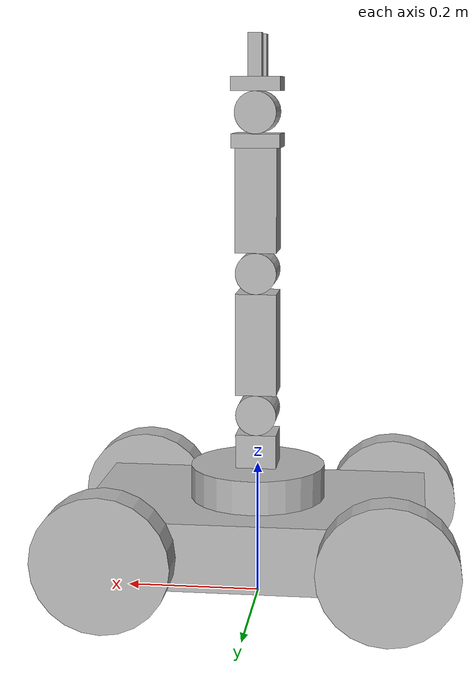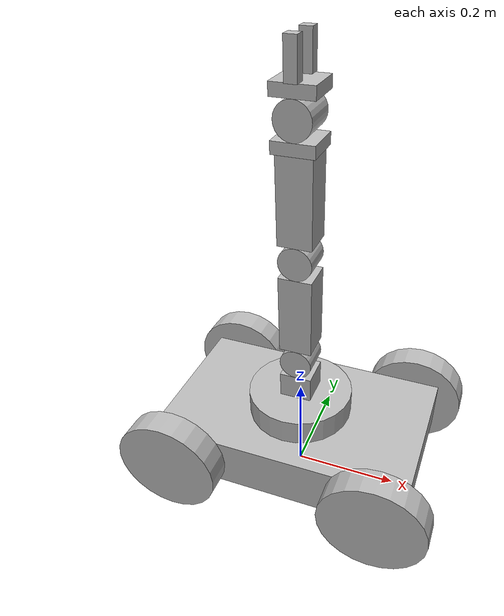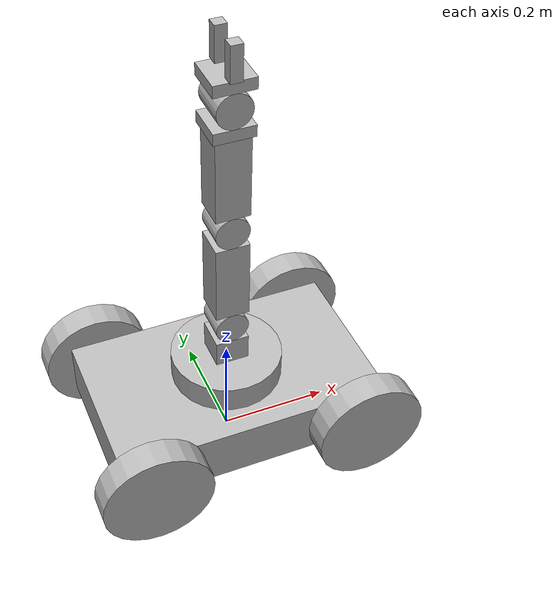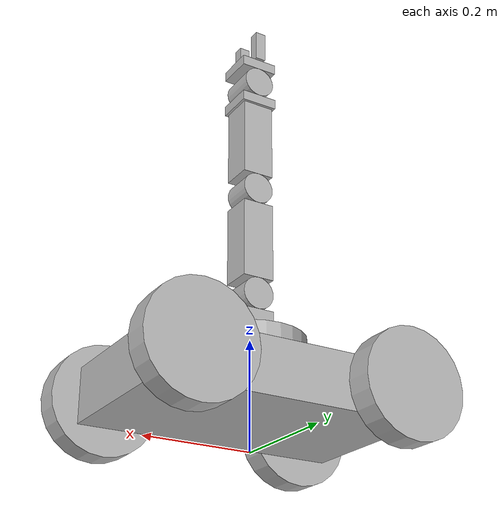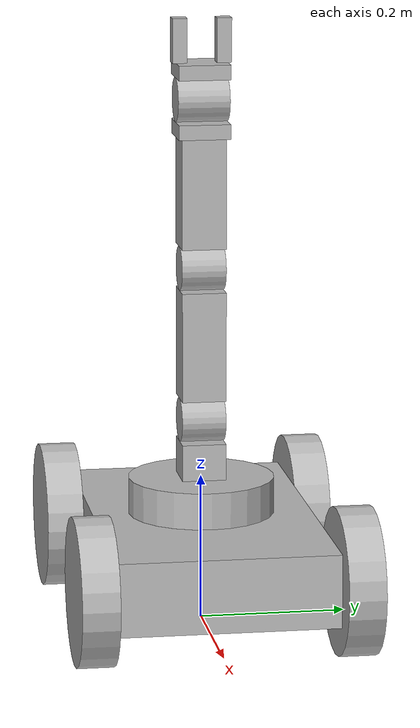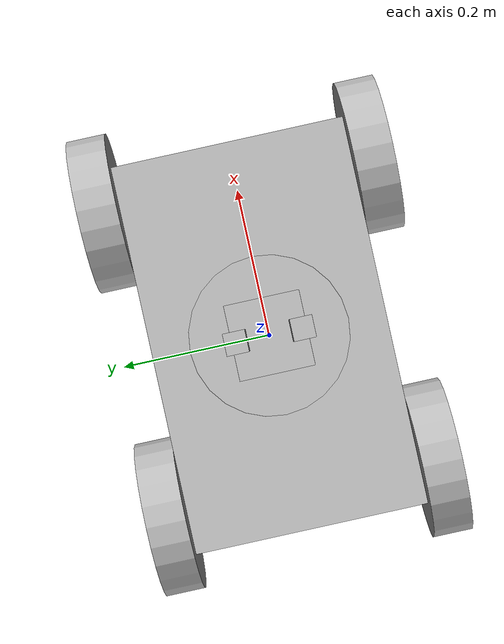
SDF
<?xml version='1.0'?>
<sdf version='1.4'>
  <model name="my_robot">

    <static>true</static>

    <!-- Chassis Link -->
    <link name='chassis'>
      <pose>0 0 .1 0 0 0</pose>
      <collision name='collision'>
        <geometry>
          <box>
            <size>.5 .3 .1</size>
          </box>
        </geometry>
      </collision>

      <visual name='visual'>
        <geometry>
          <box>
            <size>.5 .3 .1</size>
          </box>
        </geometry>
      </visual>
    </link>

    <!-- rear left Wheel Link -->
    <link name="rear_left_wheel">
      <pose>.2 .175 .1 1.5708 0 0</pose>
      <collision name="collision">
        <geometry>
          <cylinder>
            <radius>.1</radius>
            <length>.05</length>
          </cylinder>
        </geometry>
      </collision>

      <surface>
        <friction>
          <ode>
            <mu>0</mu>
            <mu2>0</mu2>
            <slip1>1.0</slip1>
            <slip2>1.0</slip2>
          </ode>
        </friction>
      </surface>

      <visual name="visual">
        <geometry>
          <cylinder>
            <radius>.1</radius>
            <length>.05</length>
          </cylinder>
        </geometry>
      </visual>
    </link>

    <!-- Joint_rear_left -->
    <joint name="joint_rl" type="revolute">
    <pose>0 0 .025 0 0 0</pose>
      <parent>chassis</parent>
      <child>rear_left_wheel</child>
      <axis>
        <xyz>0 -1 0</xyz>
      </axis>
    </joint>

    <!-- rear right Wheel Link -->
    <link name="rear_right_wheel">
      <pose>.2 -.175 .1 1.5708 0 0</pose>
      <collision name="collision">
        <geometry>
          <cylinder>
            <radius>.1</radius>
            <length>.05</length>
          </cylinder>
        </geometry>
      </collision>

      <surface>
        <friction>
          <ode>
            <mu>0</mu>
            <mu2>0</mu2>
            <slip1>1.0</slip1>
            <slip2>1.0</slip2>
          </ode>
        </friction>
      </surface>

      <visual name="visual">
        <geometry>
          <cylinder>
            <radius>.1</radius>
            <length>.05</length>
          </cylinder>
        </geometry>
      </visual>
    </link>

    <!-- Joint_rear_right -->
    <joint name="joint_rr" type="revolute">
    <pose>0 0 -.025 0 0 0</pose>
      <parent>chassis</parent>
      <child>rear_right_wheel</child>
      <axis>
        <xyz>0 1 0</xyz>
      </axis>
    </joint>

    <!-- front left Wheel Link -->
    <link name="front_left_wheel">
      <pose>-.2 .175 .1 1.5708 0 0</pose>
      <collision name="collision">
        <geometry>
          <cylinder>
            <radius>.1</radius>
            <length>.05</length>
          </cylinder>
        </geometry>
      </collision>

      <surface>
        <friction>
          <ode>
            <mu>0</mu>
            <mu2>0</mu2>
            <slip1>1.0</slip1>
            <slip2>1.0</slip2>
          </ode>
        </friction>
      </surface>

      <visual name="visual">
        <geometry>
          <cylinder>
            <radius>.1</radius>
            <length>.05</length>
          </cylinder>
        </geometry>
      </visual>
    </link>

    <!-- Joint_front_left -->
    <joint name="joint_fl" type="revolute">
    <pose>0 0 .025 0 0 0</pose>
      <parent>chassis</parent>
      <child>front_left_wheel</child>
      <axis>
        <xyz>0 -1 0</xyz>
      </axis>
    </joint>

    <!-- front right Wheel Link -->
    <link name="front_right_wheel">
      <pose>-.2 -.175 .1 1.5708 0 0</pose>
      <collision name="collision">
        <geometry>
          <cylinder>
            <radius>.1</radius>
            <length>.05</length>
          </cylinder>
        </geometry>
      </collision>

      <surface>
        <friction>
          <ode>
            <mu>0</mu>
            <mu2>0</mu2>
            <slip1>1.0</slip1>
            <slip2>1.0</slip2>
          </ode>
        </friction>
      </surface>

      <visual name="visual">
        <geometry>
          <cylinder>
            <radius>.1</radius>
            <length>.05</length>
          </cylinder>
        </geometry>
      </visual>
    </link>

    <!-- Joint_front_right -->
    <joint name="joint_fr" type="revolute">
    <pose>0 0 -.025 0 0 0</pose>
      <parent>chassis</parent>
      <child>front_right_wheel</child>
      <axis>
        <xyz>0 1 0</xyz>
      </axis>
    </joint>

    <!-- manipulator -->
    <link name="base_link">
    <pose>0 0 0.175 0 0 0</pose>
      <visual name="visual">
        <geometry>
            <cylinder>
              <radius>.1</radius>
              <length>.05</length>
            </cylinder>
        </geometry>
      </visual>
      <collision name="collision">
        <geometry>
            <cylinder>
              <radius>.1</radius>
              <length>.05</length>
            </cylinder>
        </geometry>
      </collision>
    </link>

    <!-- Joint 1 -->
    <joint name="joint1" type="revolute">
      <parent>chassis</parent>
      <child>base_link</child>
      <pose>0 0 -0.025 0 0 0</pose>
      <axis>
        <xyz>0 0 1</xyz>
      </axis>
    </joint>

   <!-- link 1 -->
   <link name="link1">
   <pose>0 0 0.225 0 0 0</pose>
      <visual name="visual">
        <geometry>
            <box>
              <size>.06 .06 .05</size>
            </box>
        </geometry>
      </visual>
      <collision name="collision">
        <geometry>
            <box>
              <size>.06 .06 .05</size>
            </box>
        </geometry>
      </collision>
    </link>

    <!-- Joint_connection_1 -->
    <joint name="joint_c1" type="fixed">
      <parent>base_link</parent>
      <child>link1</child>
      <pose>0 0 -0.025 0 0 0</pose>
    </joint>

   <!-- connection_1 -->
   <link name="connection1">
   <pose>0 0 0.28 1.5708 0 0</pose>
      <visual name="visual">
        <geometry>
            <cylinder>
              <radius>.03</radius>
              <length>.06</length>
            </cylinder>
        </geometry>
      </visual>
      <collision name="collision">
        <geometry>
            <cylinder>
              <radius>.03</radius>
              <length>.06</length>
            </cylinder>
        </geometry>
      </collision>
    </link>

    <!-- Joint_connection_2 -->
    <joint name="joint_c2" type="fixed">
      <parent>link1</parent>
      <child>connection1</child>
      <pose>0 -0.035 0 0 0 0 0</pose>
    </joint>

   <!-- link 2 -->
   <link name="link2">
   <pose>0 0 0.385 0 0 0</pose>
      <visual name="visual">
        <geometry>
            <box>
              <size>.06 .06 .15</size>
            </box>
        </geometry>
      </visual>
      <collision name="collision">
        <geometry>
            <box>
              <size>.06 .06 .15</size>
            </box>
        </geometry>
      </collision>
    </link>

    <!-- Joint 2 -->
    <joint name="joint2" type="revolute">
      <parent>link2</parent>
      <child>connection1</child>
      <pose>0 0 0 0 0 0</pose>
      <axis>
        <xyz>0 1 0</xyz>
      </axis>
    </joint>

   <!-- connection_2 -->
   <link name="connection2">
   <pose>0 0 0.49 1.5708 0 0</pose>
      <visual name="visual">
        <geometry>
            <cylinder>
              <radius>.03</radius>
              <length>.06</length>
            </cylinder>
        </geometry>
      </visual>
      <collision name="collision">
        <geometry>
            <cylinder>
              <radius>.03</radius>
              <length>.06</length>
            </cylinder>
        </geometry>
      </collision>
    </link>

    <!-- Joint_connection_3 -->
    <joint name="joint_c3" type="fixed">
      <parent>link2</parent>
      <child>connection2</child>
      <pose>0 -0.035 0 0 0 0 0</pose>
    </joint>

   <!-- link 3 -->
   <link name="link3">
   <pose>0 0 0.595 0 0 0</pose>
      <visual name="visual">
        <geometry>
            <box>
              <size>.06 .06 .15</size>
            </box>
        </geometry>
      </visual>
      <collision name="collision">
        <geometry>
            <box>
              <size>.06 .06 .15</size>
            </box>
        </geometry>
      </collision>
    </link>

    <!-- Joint 3 -->
    <joint name="joint3" type="revolute">
      <parent>link3</parent>
      <child>connection2</child>
      <pose>0 0 0 0 0 0</pose>
      <axis>
        <xyz>0 1 0</xyz>
      </axis>
    </joint>

   <!-- link 4 -->
   <link name="link4">
   <pose>0 0 0.68 0 0 0</pose>
      <visual name="visual">
        <geometry>
            <box>
              <size>.07 .07 .02</size>
            </box>
        </geometry>
      </visual>
      <collision name="collision">
        <geometry>
            <box>
              <size>.07 .07 .02</size>
            </box>
        </geometry>
      </collision>
    </link>

    <!-- Joint 4 -->
    <joint name="joint4" type="revolute">
      <parent>link3</parent>
      <child>link4</child>
      <pose>0 0 0 0 0 0</pose>
      <axis>
        <xyz>0 0 1</xyz>
      </axis>
    </joint>

   <!-- link 5 -->
   <link name="link5">
   <pose>0 0 0.72 1.5708 0 0</pose>
      <visual name="visual">
        <geometry>
            <cylinder>
              <radius>.03</radius>
              <length>.07</length>
            </cylinder>
        </geometry>
      </visual>
      <collision name="collision">
        <geometry>
            <cylinder>
              <radius>.03</radius>
              <length>.07</length>
            </cylinder>
        </geometry>
      </collision>
    </link>

    <!-- Joint 5 -->
    <joint name="joint5" type="revolute">
      <parent>link4</parent>
      <child>link5</child>
      <pose>0 0 0 0 0 0</pose>
      <axis>
        <xyz>0 1 0</xyz>
      </axis>
    </joint>

   <!-- link 6-->
   <link name="link6">
   <pose>0 0 0.76 0 0 0</pose>
      <visual name="visual">
        <geometry>
            <box>
              <size>.07 .07 .02</size>
            </box>
        </geometry>
      </visual>
      <collision name="collision">
        <geometry>
            <box>
              <size>.07 .07 .02</size>
            </box>
        </geometry>
      </collision>
    </link>

    <!-- Joint 6 -->
    <joint name="joint6" type="revolute">
      <parent>link5</parent>
      <child>link6</child>
      <pose>0 0 0 0 0 0</pose>
      <axis>
        <xyz>0 0 1</xyz>
      </axis>
    </joint>

   <!-- Gripper link 1 -->
   <link name="gripper_link_1">
   <pose>0 -.03 0.8 0 0 0</pose>
      <visual name="visual">
        <geometry>
            <box>
              <size>.02 .02 .06</size>
            </box>
        </geometry>
      </visual>
      <collision name="collision">
        <geometry>
            <box>
              <size>.02 .02 .06</size>
            </box>
        </geometry>
      </collision>
    </link>

    <!-- Gripper joint 1 -->
    <joint name="gripper_joint_1" type="prismatic">
      <parent>link6</parent>
      <child>gripper_link_1</child>
      <pose>0 0 -.03 0 0 0</pose>
      <axis>
        <xyz>0 1 0</xyz>
      </axis>
    </joint>

   <!-- Gripper link 2 -->
   <link name="gripper_link_2">
   <pose>0 .03 0.8 0 0 0</pose>
      <visual name="visual">
        <geometry>
            <box>
              <size>.02 .02 .06</size>
            </box>
        </geometry>
      </visual>
      <collision name="collision">
        <geometry>
            <box>
              <size>.02 .02 .06</size>
            </box>
        </geometry>
      </collision>
    </link>

    <!-- Gripper joint 2 -->
    <joint name="gripper_joint_2" type="prismatic">
      <parent>link6</parent>
      <child>gripper_link_2</child>
      <pose>0 0 -.03 0 0 0</pose>
      <axis>
        <xyz>0 1 0</xyz>
      </axis>
    </joint>

        <!-- Camera -->
    <link name="camera_link">
      <pose>0 0 0 0 0 0</pose>
      <sensor name="camera" type="camera">
        <camera>
          <horizontal_fov>1.047</horizontal_fov>
          <image>
            <width>640</width>
            <height>640</height>
            <format>R8G8B8</format>
          </image>
          <clip>
            <near>0.1</near>
            <far>100</far>
          </clip>
        </camera>
        <always_on>true</always_on>
        <update_rate>30</update_rate>
        <visualize>true</visualize>
      </sensor>
    </link>

    <!-- base_link와 camera_link를 연결하는 조인트 정의 -->
    <joint name="camera_joint" type="fixed">
      <parent>chassiss</parent>
      <child>camera_link</child>
      <pose>1 1 0 0 0 0</pose>
    </joint>

  </model>
</sdf>
